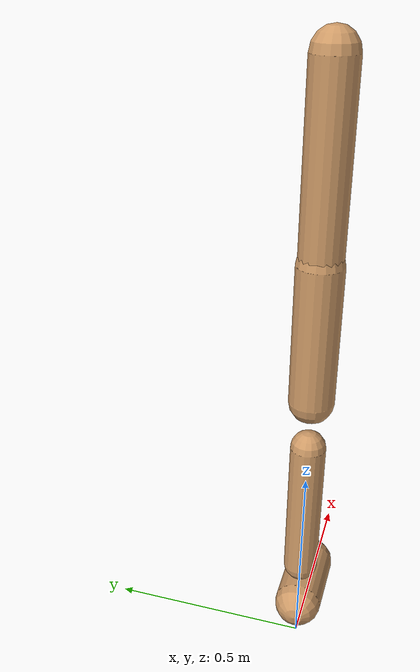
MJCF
<mujoco model="walker2d">
  <compiler angle="degree" coordinate="global" inertiafromgeom="true" />
  <default>
    <joint armature="0.01" damping=".1" limited="true" />
    <geom conaffinity="0" condim="3" contype="1" density="1000" friction="0.8 .1 .1" rgba="0.8 0.6 .4 1" />
  </default>
  <option integrator="RK4" timestep="0.002" />
  <worldbody>

    <body name="torso" pos="0 0 -0.26698934832227394">
      <joint armature="0" axis="1 0 0" damping="0" limited="false" name="ignorex" pos="0 0 0" stiffness="0" type="slide" />
      <joint armature="0" axis="0 0 1" damping="0" limited="false" name="ignorez" pos="0 0 0" ref="1.25" stiffness="0" type="slide" />
      <joint armature="0" axis="0 1 0" damping="0" limited="false" name="ignorey" pos="0 0 0" stiffness="0" type="hinge" />
      <geom fromto="0 0 1.45 0 0 1.05" name="torso_geom" size="0.04871092120031329" type="capsule" />
      <body name="thigh">
        <joint axis="0 -1 0" name="thigh_joint" pos="0 0 1.05" range="-150 0" type="hinge" />
        <geom fromto="0.0 0.0 1.05 0.0 0.0 0.7264686386789718" name="thigh_geom" size="0.05228548732094123" type="capsule" />
        <body name="leg" pos="0.0 0.0 0.12646863867897185">
          <joint axis="0 -1 0" name="leg_joint" pos="0 0 0.6" range="-150 0" type="hinge" />
          <geom fromto="0.0 0.0 0.6 0.0 0.0 0.24052070964330208" name="leg_geom" size="0.04182838985675298" type="capsule" />
          <body name="foot" pos="0.0 0.0 0.14052070964330207">
            <joint axis="0 -1 0" name="foot_joint" pos="0 0 0.1" range="-45 45" type="hinge" />
            <geom fromto="0.0 0.0 0.1 0.1663171396922481 0.0 0.1" name="foot_geom" size="0.05930827356486654" type="capsule" />
          </body>
        </body>
      </body>

      <body name="thigh_left">
        <joint axis="0 -1 0" name="thigh_left_joint" pos="0 0 1.05" range="-150 0" type="hinge" />
        <geom fromto="0.0 0.0 1.05 0.0 0.0 0.7264686386789718" name="thigh_left_geom" rgba=".7 .3 .6 1" size="0.05228548732094123" type="capsule" />
        <body name="leg_left" pos="0.0 0.0 0.12646863867897185">
          <joint axis="0 -1 0" name="leg_left_joint" pos="0 0 0.6" range="-150 0" type="hinge" />
          <geom fromto="0.0 0.0 0.6 0.0 0.0 0.24052070964330208" name="leg_left_geom" rgba=".7 .3 .6 1" size="0.04182838985675298" type="capsule" />
          <body name="foot_left" pos="0.0 0.0 0.14052070964330207">
            <joint axis="0 -1 0" name="foot_left_joint" pos="0 0 0.1" range="-45 45" type="hinge" />
            <geom fromto="0.0 0.0 0.1 0.1663171396922481 0.0 0.1" name="foot_left_geom" rgba=".7 .3 .6 1" size="0.05930827356486654" type="capsule" />
          </body>
        </body>
      </body>
    </body>
  </worldbody>
  <actuator>

    <motor ctrllimited="true" ctrlrange="-1.0 1.0" gear="100" joint="thigh_joint" />
    <motor ctrllimited="true" ctrlrange="-1.0 1.0" gear="100" joint="leg_joint" />
    <motor ctrllimited="true" ctrlrange="-1.0 1.0" gear="100" joint="foot_joint" />
    <motor ctrllimited="true" ctrlrange="-1.0 1.0" gear="100" joint="thigh_left_joint" />
    <motor ctrllimited="true" ctrlrange="-1.0 1.0" gear="100" joint="leg_left_joint" />
    <motor ctrllimited="true" ctrlrange="-1.0 1.0" gear="100" joint="foot_left_joint" />

  </actuator>
</mujoco>
